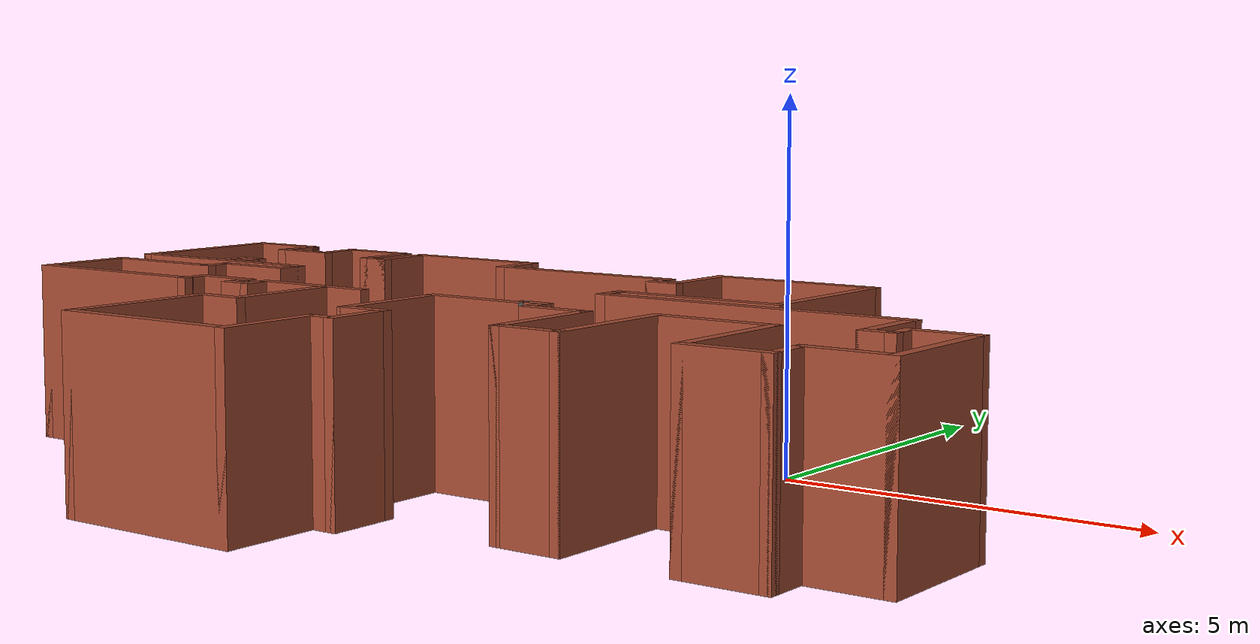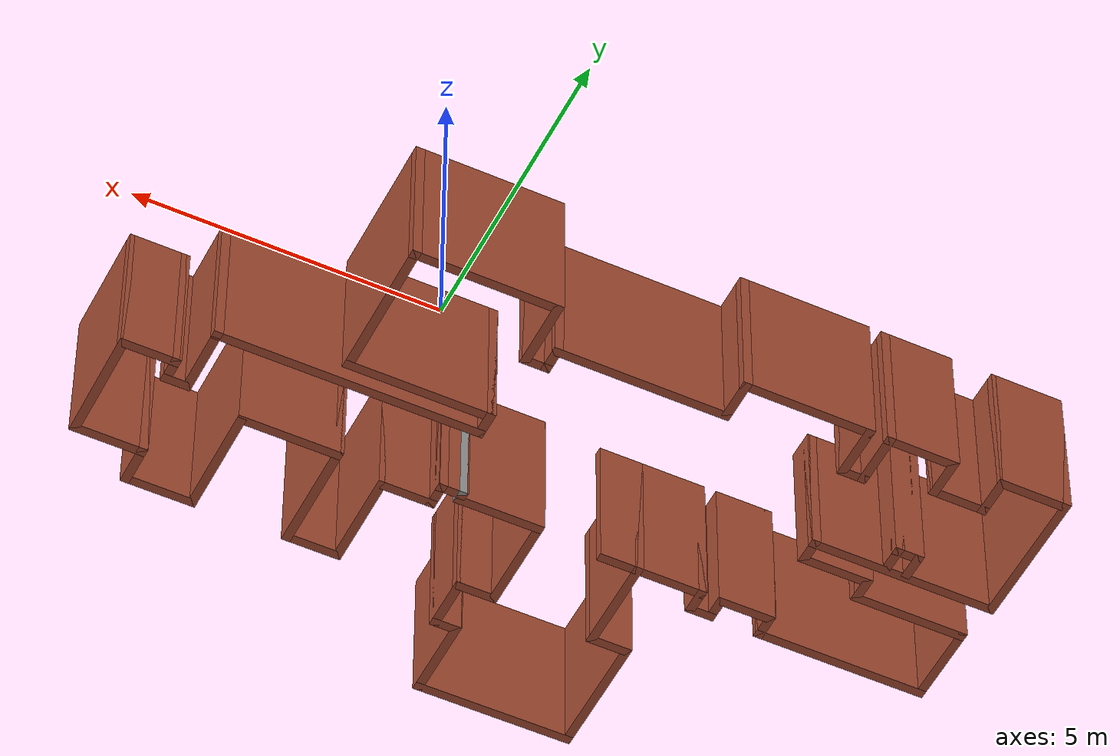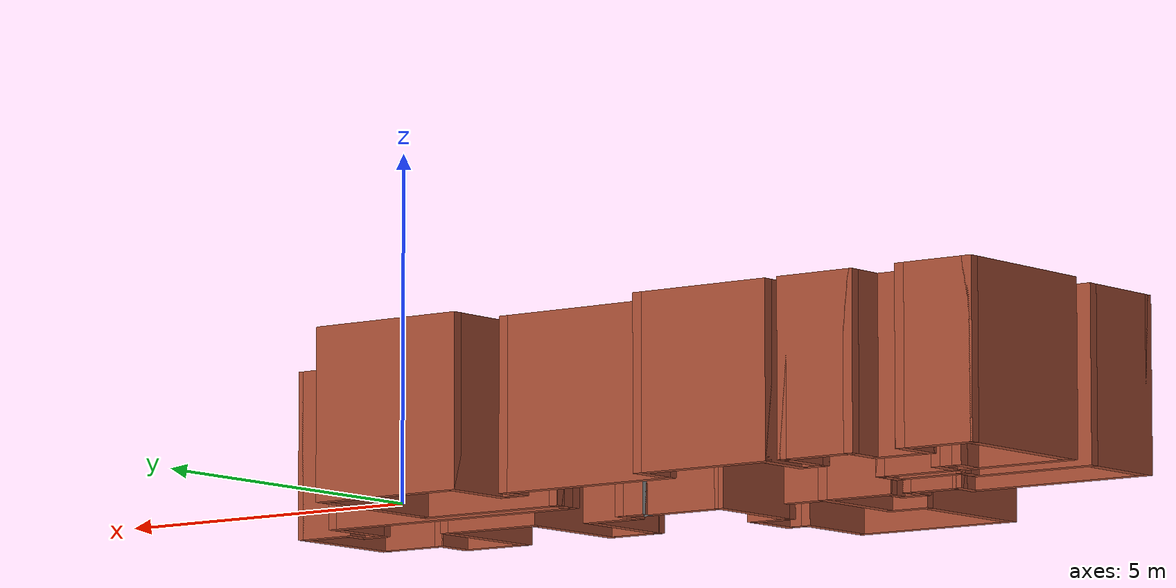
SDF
<?xml version='1.0'?>
<sdf version='1.6'>
  <model name='map_82'>
    <pose frame=''>-3.12718 -3.12906 0 0 -0 0</pose>
    <link name='Wall_10'>
      <collision name='Wall_10_Collision'>
        <geometry>
          <box>
            <size>1.25 0.15 2.5</size>
          </box>
        </geometry>
        <pose frame=''>0 0 1.25 0 -0 0</pose>
      </collision>
      <visual name='Wall_10_Visual'>
        <pose frame=''>0 0 1.25 0 -0 0</pose>
        <geometry>
          <box>
            <size>1.25 0.15 2.5</size>
          </box>
        </geometry>
        <material>
          <script>
            <uri>file://media/materials/scripts/gazebo.material</uri>
            <name>Gazebo/Bricks</name>
          </script>
          <ambient>1 1 1 1</ambient>
        </material>
        <meta>
          <layer>0</layer>
        </meta>
      </visual>
      <pose frame=''>-4.625 3.825 0 0 -0 3.14159</pose>
    </link>
    <link name='Wall_11'>
      <collision name='Wall_11_Collision'>
        <geometry>
          <box>
            <size>0.75 0.15 2.5</size>
          </box>
        </geometry>
        <pose frame=''>0 0 1.25 0 -0 0</pose>
      </collision>
      <visual name='Wall_11_Visual'>
        <pose frame=''>0 0 1.25 0 -0 0</pose>
        <geometry>
          <box>
            <size>0.75 0.15 2.5</size>
          </box>
        </geometry>
        <material>
          <script>
            <uri>file://media/materials/scripts/gazebo.material</uri>
            <name>Gazebo/Bricks</name>
          </script>
          <ambient>1 1 1 1</ambient>
        </material>
        <meta>
          <layer>0</layer>
        </meta>
      </visual>
      <pose frame=''>-5.175 3.525 0 0 -0 -1.5708</pose>
    </link>
    <link name='Wall_12'>
      <collision name='Wall_12_Collision'>
        <geometry>
          <box>
            <size>1 0.15 2.5</size>
          </box>
        </geometry>
        <pose frame=''>0 0 1.25 0 -0 0</pose>
      </collision>
      <visual name='Wall_12_Visual'>
        <pose frame=''>0 0 1.25 0 -0 0</pose>
        <geometry>
          <box>
            <size>1 0.15 2.5</size>
          </box>
        </geometry>
        <material>
          <script>
            <uri>file://media/materials/scripts/gazebo.material</uri>
            <name>Gazebo/Bricks</name>
          </script>
          <ambient>1 1 1 1</ambient>
        </material>
        <meta>
          <layer>0</layer>
        </meta>
      </visual>
      <pose frame=''>-5.6 3.225 0 0 -0 3.14159</pose>
    </link>
    <link name='Wall_13'>
      <collision name='Wall_13_Collision'>
        <geometry>
          <box>
            <size>0.75 0.15 2.5</size>
          </box>
        </geometry>
        <pose frame=''>0 0 1.25 0 -0 0</pose>
      </collision>
      <visual name='Wall_13_Visual'>
        <pose frame=''>0 0 1.25 0 -0 0</pose>
        <geometry>
          <box>
            <size>0.75 0.15 2.5</size>
          </box>
        </geometry>
        <material>
          <script>
            <uri>file://media/materials/scripts/gazebo.material</uri>
            <name>Gazebo/Bricks</name>
          </script>
          <ambient>1 1 1 1</ambient>
        </material>
        <meta>
          <layer>0</layer>
        </meta>
      </visual>
      <pose frame=''>-6.025 3.525 0 0 -0 1.5708</pose>
    </link>
    <link name='Wall_14'>
      <collision name='Wall_14_Collision'>
        <geometry>
          <box>
            <size>1.25 0.15 2.5</size>
          </box>
        </geometry>
        <pose frame=''>0 0 1.25 0 -0 0</pose>
      </collision>
      <visual name='Wall_14_Visual'>
        <pose frame=''>0 0 1.25 0 -0 0</pose>
        <geometry>
          <box>
            <size>1.25 0.15 2.5</size>
          </box>
        </geometry>
        <material>
          <script>
            <uri>file://media/materials/scripts/gazebo.material</uri>
            <name>Gazebo/Bricks</name>
          </script>
          <ambient>1 1 1 1</ambient>
        </material>
        <meta>
          <layer>0</layer>
        </meta>
      </visual>
      <pose frame=''>-6.575 3.825 0 0 -0 3.14159</pose>
    </link>
    <link name='Wall_17'>
      <collision name='Wall_17_Collision'>
        <geometry>
          <box>
            <size>2.5 0.15 2.5</size>
          </box>
        </geometry>
        <pose frame=''>0 0 1.25 0 -0 0</pose>
      </collision>
      <visual name='Wall_17_Visual'>
        <pose frame=''>0 0 1.25 0 -0 0</pose>
        <geometry>
          <box>
            <size>2.5 0.15 2.5</size>
          </box>
        </geometry>
        <material>
          <script>
            <uri>file://media/materials/scripts/gazebo.material</uri>
            <name>Gazebo/Bricks</name>
          </script>
          <ambient>1 1 1 1</ambient>
        </material>
        <meta>
          <layer>0</layer>
        </meta>
      </visual>
      <pose frame=''>-7.125 2.65 0 0 -0 -1.5708</pose>
    </link>
    <link name='Wall_18'>
      <collision name='Wall_18_Collision'>
        <geometry>
          <box>
            <size>3.25 0.15 2.5</size>
          </box>
        </geometry>
        <pose frame=''>0 0 1.25 0 -0 0</pose>
      </collision>
      <visual name='Wall_18_Visual'>
        <pose frame=''>0 0 1.25 0 -0 0</pose>
        <geometry>
          <box>
            <size>3.25 0.15 2.5</size>
          </box>
        </geometry>
        <material>
          <script>
            <uri>file://media/materials/scripts/gazebo.material</uri>
            <name>Gazebo/Bricks</name>
          </script>
          <ambient>1 1 1 1</ambient>
        </material>
        <meta>
          <layer>0</layer>
        </meta>
      </visual>
      <pose frame=''>-5.575 1.475 0 0 -0 0</pose>
    </link>
    <link name='Wall_19'>
      <collision name='Wall_19_Collision'>
        <geometry>
          <box>
            <size>0.5 0.15 2.5</size>
          </box>
        </geometry>
        <pose frame=''>0 0 1.25 0 -0 0</pose>
      </collision>
      <visual name='Wall_19_Visual'>
        <pose frame=''>0 0 1.25 0 -0 0</pose>
        <geometry>
          <box>
            <size>0.5 0.15 2.5</size>
          </box>
        </geometry>
        <material>
          <script>
            <uri>file://media/materials/scripts/gazebo.material</uri>
            <name>Gazebo/Bricks</name>
          </script>
          <ambient>1 1 1 1</ambient>
        </material>
        <meta>
          <layer>0</layer>
        </meta>
      </visual>
      <pose frame=''>-4.025 1.3 0 0 -0 -1.5708</pose>
    </link>
    <link name='Wall_2'>
      <collision name='Wall_2_Collision'>
        <geometry>
          <box>
            <size>2.25 0.15 2.5</size>
          </box>
        </geometry>
        <pose frame=''>0 0 1.25 0 -0 0</pose>
      </collision>
      <visual name='Wall_2_Visual'>
        <pose frame=''>0 0 1.25 0 -0 0</pose>
        <geometry>
          <box>
            <size>2.25 0.15 2.5</size>
          </box>
        </geometry>
        <material>
          <script>
            <uri>file://media/materials/scripts/gazebo.material</uri>
            <name>Gazebo/Bricks</name>
          </script>
          <ambient>1 1 1 1</ambient>
        </material>
        <meta>
          <layer>0</layer>
        </meta>
      </visual>
      <pose frame=''>-2.675 3.825 0 0 -0 3.14159</pose>
    </link>
    <link name='Wall_23'>
      <collision name='Wall_23_Collision'>
        <geometry>
          <box>
            <size>1.25 0.15 2.5</size>
          </box>
        </geometry>
        <pose frame=''>0 0 1.25 0 -0 0</pose>
      </collision>
      <visual name='Wall_23_Visual'>
        <pose frame=''>0 0 1.25 0 -0 0</pose>
        <geometry>
          <box>
            <size>1.25 0.15 2.5</size>
          </box>
        </geometry>
        <material>
          <script>
            <uri>file://media/materials/scripts/gazebo.material</uri>
            <name>Gazebo/Bricks</name>
          </script>
          <ambient>1 1 1 1</ambient>
        </material>
        <meta>
          <layer>0</layer>
        </meta>
      </visual>
      <pose frame=''>-4.575 1.125 0 0 -0 3.14159</pose>
    </link>
    <link name='Wall_24'>
      <collision name='Wall_24_Collision'>
        <geometry>
          <box>
            <size>0.5 0.15 2.5</size>
          </box>
        </geometry>
        <pose frame=''>0 0 1.25 0 -0 0</pose>
      </collision>
      <visual name='Wall_24_Visual'>
        <pose frame=''>0 0 1.25 0 -0 0</pose>
        <geometry>
          <box>
            <size>0.5 0.15 2.5</size>
          </box>
        </geometry>
        <material>
          <script>
            <uri>file://media/materials/scripts/gazebo.material</uri>
            <name>Gazebo/Bricks</name>
          </script>
          <ambient>1 1 1 1</ambient>
        </material>
        <meta>
          <layer>0</layer>
        </meta>
      </visual>
      <pose frame=''>-5.125 0.95 0 0 -0 -1.5708</pose>
    </link>
    <link name='Wall_25'>
      <collision name='Wall_25_Collision'>
        <geometry>
          <box>
            <size>2 0.15 2.5</size>
          </box>
        </geometry>
        <pose frame=''>0 0 1.25 0 -0 0</pose>
      </collision>
      <visual name='Wall_25_Visual'>
        <pose frame=''>0 0 1.25 0 -0 0</pose>
        <geometry>
          <box>
            <size>2 0.15 2.5</size>
          </box>
        </geometry>
        <material>
          <script>
            <uri>file://media/materials/scripts/gazebo.material</uri>
            <name>Gazebo/Bricks</name>
          </script>
          <ambient>1 1 1 1</ambient>
        </material>
        <meta>
          <layer>0</layer>
        </meta>
      </visual>
      <pose frame=''>-6.05 0.775 0 0 -0 3.14159</pose>
    </link>
    <link name='Wall_26'>
      <collision name='Wall_26_Collision'>
        <geometry>
          <box>
            <size>1.5 0.15 2.5</size>
          </box>
        </geometry>
        <pose frame=''>0 0 1.25 0 -0 0</pose>
      </collision>
      <visual name='Wall_26_Visual'>
        <pose frame=''>0 0 1.25 0 -0 0</pose>
        <geometry>
          <box>
            <size>1.5 0.15 2.5</size>
          </box>
        </geometry>
        <material>
          <script>
            <uri>file://media/materials/scripts/gazebo.material</uri>
            <name>Gazebo/Bricks</name>
          </script>
          <ambient>1 1 1 1</ambient>
        </material>
        <meta>
          <layer>0</layer>
        </meta>
      </visual>
      <pose frame=''>-6.975 0.1 0 0 -0 -1.5708</pose>
    </link>
    <link name='Wall_27'>
      <collision name='Wall_27_Collision'>
        <geometry>
          <box>
            <size>3 0.15 2.5</size>
          </box>
        </geometry>
        <pose frame=''>0 0 1.25 0 -0 0</pose>
      </collision>
      <visual name='Wall_27_Visual'>
        <pose frame=''>0 0 1.25 0 -0 0</pose>
        <geometry>
          <box>
            <size>3 0.15 2.5</size>
          </box>
        </geometry>
        <material>
          <script>
            <uri>file://media/materials/scripts/gazebo.material</uri>
            <name>Gazebo/Bricks</name>
          </script>
          <ambient>1 1 1 1</ambient>
        </material>
        <meta>
          <layer>0</layer>
        </meta>
      </visual>
      <pose frame=''>-5.55 -0.575 0 0 -0 0</pose>
    </link>
    <link name='Wall_28'>
      <collision name='Wall_28_Collision'>
        <geometry>
          <box>
            <size>0.5 0.15 2.5</size>
          </box>
        </geometry>
        <pose frame=''>0 0 1.25 0 -0 0</pose>
      </collision>
      <visual name='Wall_28_Visual'>
        <pose frame=''>0 0 1.25 0 -0 0</pose>
        <geometry>
          <box>
            <size>0.5 0.15 2.5</size>
          </box>
        </geometry>
        <material>
          <script>
            <uri>file://media/materials/scripts/gazebo.material</uri>
            <name>Gazebo/Bricks</name>
          </script>
          <ambient>1 1 1 1</ambient>
        </material>
        <meta>
          <layer>0</layer>
        </meta>
      </visual>
      <pose frame=''>-4.125 -0.4 0 0 -0 1.5708</pose>
    </link>
    <link name='Wall_29'>
      <collision name='Wall_29_Collision'>
        <geometry>
          <box>
            <size>1 0.15 2.5</size>
          </box>
        </geometry>
        <pose frame=''>0 0 1.25 0 -0 0</pose>
      </collision>
      <visual name='Wall_29_Visual'>
        <pose frame=''>0 0 1.25 0 -0 0</pose>
        <geometry>
          <box>
            <size>1 0.15 2.5</size>
          </box>
        </geometry>
        <material>
          <script>
            <uri>file://media/materials/scripts/gazebo.material</uri>
            <name>Gazebo/Bricks</name>
          </script>
          <ambient>1 1 1 1</ambient>
        </material>
        <meta>
          <layer>0</layer>
        </meta>
      </visual>
      <pose frame=''>-3.7 -0.225 0 0 -0 0</pose>
    </link>
    <link name='Wall_30'>
      <collision name='Wall_30_Collision'>
        <geometry>
          <box>
            <size>0.5 0.15 2.5</size>
          </box>
        </geometry>
        <pose frame=''>0 0 1.25 0 -0 0</pose>
      </collision>
      <visual name='Wall_30_Visual'>
        <pose frame=''>0 0 1.25 0 -0 0</pose>
        <geometry>
          <box>
            <size>0.5 0.15 2.5</size>
          </box>
        </geometry>
        <material>
          <script>
            <uri>file://media/materials/scripts/gazebo.material</uri>
            <name>Gazebo/Bricks</name>
          </script>
          <ambient>1 1 1 1</ambient>
        </material>
        <meta>
          <layer>0</layer>
        </meta>
      </visual>
      <pose frame=''>-3.275 -0.4 0 0 -0 -1.5708</pose>
    </link>
    <link name='Wall_31'>
      <collision name='Wall_31_Collision'>
        <geometry>
          <box>
            <size>0.5 0.15 2.5</size>
          </box>
        </geometry>
        <pose frame=''>0 0 1.25 0 -0 0</pose>
      </collision>
      <visual name='Wall_31_Visual'>
        <pose frame=''>0 0 1.25 0 -0 0</pose>
        <geometry>
          <box>
            <size>0.5 0.15 2.5</size>
          </box>
        </geometry>
        <material>
          <script>
            <uri>file://media/materials/scripts/gazebo.material</uri>
            <name>Gazebo/Bricks</name>
          </script>
          <ambient>1 1 1 1</ambient>
        </material>
        <meta>
          <layer>0</layer>
        </meta>
      </visual>
      <pose frame=''>-3.1 -0.575 0 0 -0 0</pose>
    </link>
    <link name='Wall_32'>
      <collision name='Wall_32_Collision'>
        <geometry>
          <box>
            <size>0.5 0.15 2.5</size>
          </box>
        </geometry>
        <pose frame=''>0 0 1.25 0 -0 0</pose>
      </collision>
      <visual name='Wall_32_Visual'>
        <pose frame=''>0 0 1.25 0 -0 0</pose>
        <geometry>
          <box>
            <size>0.5 0.15 2.5</size>
          </box>
        </geometry>
        <material>
          <script>
            <uri>file://media/materials/scripts/gazebo.material</uri>
            <name>Gazebo/Bricks</name>
          </script>
          <ambient>1 1 1 1</ambient>
        </material>
        <meta>
          <layer>0</layer>
        </meta>
      </visual>
      <pose frame=''>-2.925 -0.4 0 0 -0 1.5708</pose>
    </link>
    <link name='Wall_33'>
      <collision name='Wall_33_Collision'>
        <geometry>
          <box>
            <size>1.25 0.15 2.5</size>
          </box>
        </geometry>
        <pose frame=''>0 0 1.25 0 -0 0</pose>
      </collision>
      <visual name='Wall_33_Visual'>
        <pose frame=''>0 0 1.25 0 -0 0</pose>
        <geometry>
          <box>
            <size>1.25 0.15 2.5</size>
          </box>
        </geometry>
        <material>
          <script>
            <uri>file://media/materials/scripts/gazebo.material</uri>
            <name>Gazebo/Bricks</name>
          </script>
          <ambient>1 1 1 1</ambient>
        </material>
        <meta>
          <layer>0</layer>
        </meta>
      </visual>
      <pose frame=''>-2.375 -0.225 0 0 -0 0</pose>
    </link>
    <link name='Wall_34'>
      <collision name='Wall_34_Collision'>
        <geometry>
          <box>
            <size>1.75 0.15 2.5</size>
          </box>
        </geometry>
        <pose frame=''>0 0 1.25 0 -0 0</pose>
      </collision>
      <visual name='Wall_34_Visual'>
        <pose frame=''>0 0 1.25 0 -0 0</pose>
        <geometry>
          <box>
            <size>1.75 0.15 2.5</size>
          </box>
        </geometry>
        <material>
          <script>
            <uri>file://media/materials/scripts/gazebo.material</uri>
            <name>Gazebo/Bricks</name>
          </script>
          <ambient>1 1 1 1</ambient>
        </material>
        <meta>
          <layer>0</layer>
        </meta>
      </visual>
      <pose frame=''>-1.825 -1.025 0 0 -0 -1.5708</pose>
    </link>
    <link name='Wall_35'>
      <collision name='Wall_35_Collision'>
        <geometry>
          <box>
            <size>0.75 0.15 2.5</size>
          </box>
        </geometry>
        <pose frame=''>0 0 1.25 0 -0 0</pose>
      </collision>
      <visual name='Wall_35_Visual'>
        <pose frame=''>0 0 1.25 0 -0 0</pose>
        <geometry>
          <box>
            <size>0.75 0.15 2.5</size>
          </box>
        </geometry>
        <material>
          <script>
            <uri>file://media/materials/scripts/gazebo.material</uri>
            <name>Gazebo/Bricks</name>
          </script>
          <ambient>1 1 1 1</ambient>
        </material>
        <meta>
          <layer>0</layer>
        </meta>
      </visual>
      <pose frame=''>-2.125 -1.825 0 0 -0 3.14159</pose>
    </link>
    <link name='Wall_36'>
      <collision name='Wall_36_Collision'>
        <geometry>
          <box>
            <size>2.25 0.15 2.5</size>
          </box>
        </geometry>
        <pose frame=''>0 0 1.25 0 -0 0</pose>
      </collision>
      <visual name='Wall_36_Visual'>
        <pose frame=''>0 0 1.25 0 -0 0</pose>
        <geometry>
          <box>
            <size>2.25 0.15 2.5</size>
          </box>
        </geometry>
        <material>
          <script>
            <uri>file://media/materials/scripts/gazebo.material</uri>
            <name>Gazebo/Bricks</name>
          </script>
          <ambient>1 1 1 1</ambient>
        </material>
        <meta>
          <layer>0</layer>
        </meta>
      </visual>
      <pose frame=''>-2.425 -2.875 0 0 -0 -1.5708</pose>
    </link>
    <link name='Wall_37'>
      <collision name='Wall_37_Collision'>
        <geometry>
          <box>
            <size>2.75 0.15 2.5</size>
          </box>
        </geometry>
        <pose frame=''>0 0 1.25 0 -0 0</pose>
      </collision>
      <visual name='Wall_37_Visual'>
        <pose frame=''>0 0 1.25 0 -0 0</pose>
        <geometry>
          <box>
            <size>2.75 0.15 2.5</size>
          </box>
        </geometry>
        <material>
          <script>
            <uri>file://media/materials/scripts/gazebo.material</uri>
            <name>Gazebo/Bricks</name>
          </script>
          <ambient>1 1 1 1</ambient>
        </material>
        <meta>
          <layer>0</layer>
        </meta>
      </visual>
      <pose frame=''>-1.125 -3.925 0 0 -0 0</pose>
    </link>
    <link name='Wall_38'>
      <collision name='Wall_38_Collision'>
        <geometry>
          <box>
            <size>1.5 0.15 2.5</size>
          </box>
        </geometry>
        <pose frame=''>0 0 1.25 0 -0 0</pose>
      </collision>
      <visual name='Wall_38_Visual'>
        <pose frame=''>0 0 1.25 0 -0 0</pose>
        <geometry>
          <box>
            <size>1.5 0.15 2.5</size>
          </box>
        </geometry>
        <material>
          <script>
            <uri>file://media/materials/scripts/gazebo.material</uri>
            <name>Gazebo/Bricks</name>
          </script>
          <ambient>1 1 1 1</ambient>
        </material>
        <meta>
          <layer>0</layer>
        </meta>
      </visual>
      <pose frame=''>0.175 -3.25 0 0 -0 1.5708</pose>
    </link>
    <link name='Wall_39'>
      <collision name='Wall_39_Collision'>
        <geometry>
          <box>
            <size>0.5 0.15 2.5</size>
          </box>
        </geometry>
        <pose frame=''>0 0 1.25 0 -0 0</pose>
      </collision>
      <visual name='Wall_39_Visual'>
        <pose frame=''>0 0 1.25 0 -0 0</pose>
        <geometry>
          <box>
            <size>0.5 0.15 2.5</size>
          </box>
        </geometry>
        <material>
          <script>
            <uri>file://media/materials/scripts/gazebo.material</uri>
            <name>Gazebo/Bricks</name>
          </script>
          <ambient>1 1 1 1</ambient>
        </material>
        <meta>
          <layer>0</layer>
        </meta>
      </visual>
      <pose frame=''>0.35 -2.575 0 0 -0 0</pose>
    </link>
    <link name='Wall_42'>
      <collision name='Wall_42_Collision'>
        <geometry>
          <box>
            <size>1 0.15 2.5</size>
          </box>
        </geometry>
        <pose frame=''>0 0 1.25 0 -0 0</pose>
      </collision>
      <visual name='Wall_42_Visual'>
        <pose frame=''>0 0 1.25 0 -0 0</pose>
        <geometry>
          <box>
            <size>1 0.15 2.5</size>
          </box>
        </geometry>
        <material>
          <script>
            <uri>file://media/materials/scripts/gazebo.material</uri>
            <name>Gazebo/Bricks</name>
          </script>
          <ambient>1 1 1 1</ambient>
        </material>
        <meta>
          <layer>0</layer>
        </meta>
      </visual>
      <pose frame=''>0.525 -2.15 0 0 -0 1.5708</pose>
    </link>
    <link name='Wall_43'>
      <collision name='Wall_43_Collision'>
        <geometry>
          <box>
            <size>0.75 0.15 2.5</size>
          </box>
        </geometry>
        <pose frame=''>0 0 1.25 0 -0 0</pose>
      </collision>
      <visual name='Wall_43_Visual'>
        <pose frame=''>0 0 1.25 0 -0 0</pose>
        <geometry>
          <box>
            <size>0.75 0.15 2.5</size>
          </box>
        </geometry>
        <material>
          <script>
            <uri>file://media/materials/scripts/gazebo.material</uri>
            <name>Gazebo/Bricks</name>
          </script>
          <ambient>1 1 1 1</ambient>
        </material>
        <meta>
          <layer>0</layer>
        </meta>
      </visual>
      <pose frame=''>0.225 -1.725 0 0 -0 3.14159</pose>
    </link>
    <link name='Wall_44'>
      <collision name='Wall_44_Collision'>
        <geometry>
          <box>
            <size>1.75 0.15 2.5</size>
          </box>
        </geometry>
        <pose frame=''>0 0 1.25 0 -0 0</pose>
      </collision>
      <visual name='Wall_44_Visual'>
        <pose frame=''>0 0 1.25 0 -0 0</pose>
        <geometry>
          <box>
            <size>1.75 0.15 2.5</size>
          </box>
        </geometry>
        <material>
          <script>
            <uri>file://media/materials/scripts/gazebo.material</uri>
            <name>Gazebo/Bricks</name>
          </script>
          <ambient>1 1 1 1</ambient>
        </material>
        <meta>
          <layer>0</layer>
        </meta>
      </visual>
      <pose frame=''>-0.075 -0.925 0 0 -0 1.5708</pose>
    </link>
    <link name='Wall_45'>
      <collision name='Wall_45_Collision'>
        <geometry>
          <box>
            <size>1.5 0.15 2.5</size>
          </box>
        </geometry>
        <pose frame=''>0 0 1.25 0 -0 0</pose>
      </collision>
      <visual name='Wall_45_Visual'>
        <pose frame=''>0 0 1.25 0 -0 0</pose>
        <geometry>
          <box>
            <size>1.5 0.15 2.5</size>
          </box>
        </geometry>
        <material>
          <script>
            <uri>file://media/materials/scripts/gazebo.material</uri>
            <name>Gazebo/Bricks</name>
          </script>
          <ambient>1 1 1 1</ambient>
        </material>
        <meta>
          <layer>0</layer>
        </meta>
      </visual>
      <pose frame=''>0.6 -0.125 0 0 -0 0</pose>
    </link>
    <link name='Wall_46'>
      <collision name='Wall_46_Collision'>
        <geometry>
          <box>
            <size>0.25 0.15 2.5</size>
          </box>
        </geometry>
        <pose frame=''>0 0 1.25 0 -0 0</pose>
      </collision>
      <visual name='Wall_46_Visual'>
        <pose frame=''>0 0 1.25 0 -0 0</pose>
        <geometry>
          <box>
            <size>0.25 0.15 2.5</size>
          </box>
        </geometry>
        <material>
          <script>
            <uri>file://media/materials/scripts/gazebo.material</uri>
            <name>Gazebo/Grey</name>
          </script>
          <ambient>1 1 1 1</ambient>
        </material>
        <meta>
          <layer>0</layer>
        </meta>
      </visual>
      <pose frame=''>1.275 -0.075 0 0 -0 1.5708</pose>
    </link>
    <link name='Wall_47'>
      <collision name='Wall_47_Collision'>
        <geometry>
          <box>
            <size>0.5 0.15 2.5</size>
          </box>
        </geometry>
        <pose frame=''>0 0 1.25 0 -0 0</pose>
      </collision>
      <visual name='Wall_47_Visual'>
        <pose frame=''>0 0 1.25 0 -0 0</pose>
        <geometry>
          <box>
            <size>0.5 0.15 2.5</size>
          </box>
        </geometry>
        <material>
          <script>
            <uri>file://media/materials/scripts/gazebo.material</uri>
            <name>Gazebo/Bricks</name>
          </script>
          <ambient>1 1 1 1</ambient>
        </material>
        <meta>
          <layer>0</layer>
        </meta>
      </visual>
      <pose frame=''>1.45 -0.025 0 0 -0 0</pose>
    </link>
    <link name='Wall_48'>
      <collision name='Wall_48_Collision'>
        <geometry>
          <box>
            <size>0.5 0.15 2.5</size>
          </box>
        </geometry>
        <pose frame=''>0 0 1.25 0 -0 0</pose>
      </collision>
      <visual name='Wall_48_Visual'>
        <pose frame=''>0 0 1.25 0 -0 0</pose>
        <geometry>
          <box>
            <size>0.5 0.15 2.5</size>
          </box>
        </geometry>
        <material>
          <script>
            <uri>file://media/materials/scripts/gazebo.material</uri>
            <name>Gazebo/Bricks</name>
          </script>
          <ambient>1 1 1 1</ambient>
        </material>
        <meta>
          <layer>0</layer>
        </meta>
      </visual>
      <pose frame=''>1.625 -0.2 0 0 -0 -1.5708</pose>
    </link>
    <link name='Wall_49'>
      <collision name='Wall_49_Collision'>
        <geometry>
          <box>
            <size>1 0.15 2.5</size>
          </box>
        </geometry>
        <pose frame=''>0 0 1.25 0 -0 0</pose>
      </collision>
      <visual name='Wall_49_Visual'>
        <pose frame=''>0 0 1.25 0 -0 0</pose>
        <geometry>
          <box>
            <size>1 0.15 2.5</size>
          </box>
        </geometry>
        <material>
          <script>
            <uri>file://media/materials/scripts/gazebo.material</uri>
            <name>Gazebo/Bricks</name>
          </script>
          <ambient>1 1 1 1</ambient>
        </material>
        <meta>
          <layer>0</layer>
        </meta>
      </visual>
      <pose frame=''>2.05 -0.375 0 0 -0 0</pose>
    </link>
    <link name='Wall_5'>
      <collision name='Wall_5_Collision'>
        <geometry>
          <box>
            <size>1 0.15 2.5</size>
          </box>
        </geometry>
        <pose frame=''>0 0 1.25 0 -0 0</pose>
      </collision>
      <visual name='Wall_5_Visual'>
        <pose frame=''>0 0 1.25 0 -0 0</pose>
        <geometry>
          <box>
            <size>1 0.15 2.5</size>
          </box>
        </geometry>
        <material>
          <script>
            <uri>file://media/materials/scripts/gazebo.material</uri>
            <name>Gazebo/Bricks</name>
          </script>
          <ambient>1 1 1 1</ambient>
        </material>
        <meta>
          <layer>0</layer>
        </meta>
      </visual>
      <pose frame=''>-3.725 3.4 0 0 -0 -1.5708</pose>
    </link>
    <link name='Wall_50'>
      <collision name='Wall_50_Collision'>
        <geometry>
          <box>
            <size>1.75 0.15 2.5</size>
          </box>
        </geometry>
        <pose frame=''>0 0 1.25 0 -0 0</pose>
      </collision>
      <visual name='Wall_50_Visual'>
        <pose frame=''>0 0 1.25 0 -0 0</pose>
        <geometry>
          <box>
            <size>1.75 0.15 2.5</size>
          </box>
        </geometry>
        <material>
          <script>
            <uri>file://media/materials/scripts/gazebo.material</uri>
            <name>Gazebo/Bricks</name>
          </script>
          <ambient>1 1 1 1</ambient>
        </material>
        <meta>
          <layer>0</layer>
        </meta>
      </visual>
      <pose frame=''>2.475 -1.175 0 0 -0 -1.5708</pose>
    </link>
    <link name='Wall_51'>
      <collision name='Wall_51_Collision'>
        <geometry>
          <box>
            <size>1 0.15 2.5</size>
          </box>
        </geometry>
        <pose frame=''>0 0 1.25 0 -0 0</pose>
      </collision>
      <visual name='Wall_51_Visual'>
        <pose frame=''>0 0 1.25 0 -0 0</pose>
        <geometry>
          <box>
            <size>1 0.15 2.5</size>
          </box>
        </geometry>
        <material>
          <script>
            <uri>file://media/materials/scripts/gazebo.material</uri>
            <name>Gazebo/Bricks</name>
          </script>
          <ambient>1 1 1 1</ambient>
        </material>
        <meta>
          <layer>0</layer>
        </meta>
      </visual>
      <pose frame=''>2.9 -1.975 0 0 -0 0</pose>
    </link>
    <link name='Wall_52'>
      <collision name='Wall_52_Collision'>
        <geometry>
          <box>
            <size>2 0.15 2.5</size>
          </box>
        </geometry>
        <pose frame=''>0 0 1.25 0 -0 0</pose>
      </collision>
      <visual name='Wall_52_Visual'>
        <pose frame=''>0 0 1.25 0 -0 0</pose>
        <geometry>
          <box>
            <size>2 0.15 2.5</size>
          </box>
        </geometry>
        <material>
          <script>
            <uri>file://media/materials/scripts/gazebo.material</uri>
            <name>Gazebo/Bricks</name>
          </script>
          <ambient>1 1 1 1</ambient>
        </material>
        <meta>
          <layer>0</layer>
        </meta>
      </visual>
      <pose frame=''>3.325 -1.05 0 0 -0 1.5708</pose>
    </link>
    <link name='Wall_53'>
      <collision name='Wall_53_Collision'>
        <geometry>
          <box>
            <size>1.75 0.15 2.5</size>
          </box>
        </geometry>
        <pose frame=''>0 0 1.25 0 -0 0</pose>
      </collision>
      <visual name='Wall_53_Visual'>
        <pose frame=''>0 0 1.25 0 -0 0</pose>
        <geometry>
          <box>
            <size>1.75 0.15 2.5</size>
          </box>
        </geometry>
        <material>
          <script>
            <uri>file://media/materials/scripts/gazebo.material</uri>
            <name>Gazebo/Bricks</name>
          </script>
          <ambient>1 1 1 1</ambient>
        </material>
        <meta>
          <layer>0</layer>
        </meta>
      </visual>
      <pose frame=''>4.125 -0.125 0 0 -0 0</pose>
    </link>
    <link name='Wall_54'>
      <collision name='Wall_54_Collision'>
        <geometry>
          <box>
            <size>2 0.15 2.5</size>
          </box>
        </geometry>
        <pose frame=''>0 0 1.25 0 -0 0</pose>
      </collision>
      <visual name='Wall_54_Visual'>
        <pose frame=''>0 0 1.25 0 -0 0</pose>
        <geometry>
          <box>
            <size>2 0.15 2.5</size>
          </box>
        </geometry>
        <material>
          <script>
            <uri>file://media/materials/scripts/gazebo.material</uri>
            <name>Gazebo/Bricks</name>
          </script>
          <ambient>1 1 1 1</ambient>
        </material>
        <meta>
          <layer>0</layer>
        </meta>
      </visual>
      <pose frame=''>4.925 -1.05 0 0 -0 -1.5708</pose>
    </link>
    <link name='Wall_55'>
      <collision name='Wall_55_Collision'>
        <geometry>
          <box>
            <size>1.25 0.15 2.5</size>
          </box>
        </geometry>
        <pose frame=''>0 0 1.25 0 -0 0</pose>
      </collision>
      <visual name='Wall_55_Visual'>
        <pose frame=''>0 0 1.25 0 -0 0</pose>
        <geometry>
          <box>
            <size>1.25 0.15 2.5</size>
          </box>
        </geometry>
        <material>
          <script>
            <uri>file://media/materials/scripts/gazebo.material</uri>
            <name>Gazebo/Bricks</name>
          </script>
          <ambient>1 1 1 1</ambient>
        </material>
        <meta>
          <layer>0</layer>
        </meta>
      </visual>
      <pose frame=''>5.475 -1.975 0 0 -0 0</pose>
    </link>
    <link name='Wall_56'>
      <collision name='Wall_56_Collision'>
        <geometry>
          <box>
            <size>0.75 0.15 2.5</size>
          </box>
        </geometry>
        <pose frame=''>0 0 1.25 0 -0 0</pose>
      </collision>
      <visual name='Wall_56_Visual'>
        <pose frame=''>0 0 1.25 0 -0 0</pose>
        <geometry>
          <box>
            <size>0.75 0.15 2.5</size>
          </box>
        </geometry>
        <material>
          <script>
            <uri>file://media/materials/scripts/gazebo.material</uri>
            <name>Gazebo/Bricks</name>
          </script>
          <ambient>1 1 1 1</ambient>
        </material>
        <meta>
          <layer>0</layer>
        </meta>
      </visual>
      <pose frame=''>6.025 -1.675 0 0 -0 1.5708</pose>
    </link>
    <link name='Wall_57'>
      <collision name='Wall_57_Collision'>
        <geometry>
          <box>
            <size>1.25 0.15 2.5</size>
          </box>
        </geometry>
        <pose frame=''>0 0 1.25 0 -0 0</pose>
      </collision>
      <visual name='Wall_57_Visual'>
        <pose frame=''>0 0 1.25 0 -0 0</pose>
        <geometry>
          <box>
            <size>1.25 0.15 2.5</size>
          </box>
        </geometry>
        <material>
          <script>
            <uri>file://media/materials/scripts/gazebo.material</uri>
            <name>Gazebo/Bricks</name>
          </script>
          <ambient>1 1 1 1</ambient>
        </material>
        <meta>
          <layer>0</layer>
        </meta>
      </visual>
      <pose frame=''>6.575 -1.375 0 0 -0 0</pose>
    </link>
    <link name='Wall_58'>
      <collision name='Wall_58_Collision'>
        <geometry>
          <box>
            <size>2 0.15 2.5</size>
          </box>
        </geometry>
        <pose frame=''>0 0 1.25 0 -0 0</pose>
      </collision>
      <visual name='Wall_58_Visual'>
        <pose frame=''>0 0 1.25 0 -0 0</pose>
        <geometry>
          <box>
            <size>2 0.15 2.5</size>
          </box>
        </geometry>
        <material>
          <script>
            <uri>file://media/materials/scripts/gazebo.material</uri>
            <name>Gazebo/Bricks</name>
          </script>
          <ambient>1 1 1 1</ambient>
        </material>
        <meta>
          <layer>0</layer>
        </meta>
      </visual>
      <pose frame=''>7.125 -0.45 0 0 -0 1.5708</pose>
    </link>
    <link name='Wall_59'>
      <collision name='Wall_59_Collision'>
        <geometry>
          <box>
            <size>1 0.15 2.5</size>
          </box>
        </geometry>
        <pose frame=''>0 0 1.25 0 -0 0</pose>
      </collision>
      <visual name='Wall_59_Visual'>
        <pose frame=''>0 0 1.25 0 -0 0</pose>
        <geometry>
          <box>
            <size>1 0.15 2.5</size>
          </box>
        </geometry>
        <material>
          <script>
            <uri>file://media/materials/scripts/gazebo.material</uri>
            <name>Gazebo/Bricks</name>
          </script>
          <ambient>1 1 1 1</ambient>
        </material>
        <meta>
          <layer>0</layer>
        </meta>
      </visual>
      <pose frame=''>6.7 0.475 0 0 -0 3.14159</pose>
    </link>
    <link name='Wall_60'>
      <collision name='Wall_60_Collision'>
        <geometry>
          <box>
            <size>0.5 0.15 2.5</size>
          </box>
        </geometry>
        <pose frame=''>0 0 1.25 0 -0 0</pose>
      </collision>
      <visual name='Wall_60_Visual'>
        <pose frame=''>0 0 1.25 0 -0 0</pose>
        <geometry>
          <box>
            <size>0.5 0.15 2.5</size>
          </box>
        </geometry>
        <material>
          <script>
            <uri>file://media/materials/scripts/gazebo.material</uri>
            <name>Gazebo/Bricks</name>
          </script>
          <ambient>1 1 1 1</ambient>
        </material>
        <meta>
          <layer>0</layer>
        </meta>
      </visual>
      <pose frame=''>6.275 0.3 0 0 -0 -1.5708</pose>
    </link>
    <link name='Wall_61'>
      <collision name='Wall_61_Collision'>
        <geometry>
          <box>
            <size>0.5 0.15 2.5</size>
          </box>
        </geometry>
        <pose frame=''>0 0 1.25 0 -0 0</pose>
      </collision>
      <visual name='Wall_61_Visual'>
        <pose frame=''>0 0 1.25 0 -0 0</pose>
        <geometry>
          <box>
            <size>0.5 0.15 2.5</size>
          </box>
        </geometry>
        <material>
          <script>
            <uri>file://media/materials/scripts/gazebo.material</uri>
            <name>Gazebo/Bricks</name>
          </script>
          <ambient>1 1 1 1</ambient>
        </material>
        <meta>
          <layer>0</layer>
        </meta>
      </visual>
      <pose frame=''>6.1 0.125 0 0 -0 3.14159</pose>
    </link>
    <link name='Wall_65'>
      <collision name='Wall_65_Collision'>
        <geometry>
          <box>
            <size>1.25 0.15 2.5</size>
          </box>
        </geometry>
        <pose frame=''>0 0 1.25 0 -0 0</pose>
      </collision>
      <visual name='Wall_65_Visual'>
        <pose frame=''>0 0 1.25 0 -0 0</pose>
        <geometry>
          <box>
            <size>1.25 0.15 2.5</size>
          </box>
        </geometry>
        <material>
          <script>
            <uri>file://media/materials/scripts/gazebo.material</uri>
            <name>Gazebo/Bricks</name>
          </script>
          <ambient>1 1 1 1</ambient>
        </material>
        <meta>
          <layer>0</layer>
        </meta>
      </visual>
      <pose frame=''>5.925 0.675 0 0 -0 1.5708</pose>
    </link>
    <link name='Wall_66'>
      <collision name='Wall_66_Collision'>
        <geometry>
          <box>
            <size>4.5 0.15 2.5</size>
          </box>
        </geometry>
        <pose frame=''>0 0 1.25 0 -0 0</pose>
      </collision>
      <visual name='Wall_66_Visual'>
        <pose frame=''>0 0 1.25 0 -0 0</pose>
        <geometry>
          <box>
            <size>4.5 0.15 2.5</size>
          </box>
        </geometry>
        <material>
          <script>
            <uri>file://media/materials/scripts/gazebo.material</uri>
            <name>Gazebo/Bricks</name>
          </script>
          <ambient>1 1 1 1</ambient>
        </material>
        <meta>
          <layer>0</layer>
        </meta>
      </visual>
      <pose frame=''>3.75 1.225 0 0 -0 3.14159</pose>
    </link>
    <link name='Wall_67'>
      <collision name='Wall_67_Collision'>
        <geometry>
          <box>
            <size>0.5 0.15 2.5</size>
          </box>
        </geometry>
        <pose frame=''>0 0 1.25 0 -0 0</pose>
      </collision>
      <visual name='Wall_67_Visual'>
        <pose frame=''>0 0 1.25 0 -0 0</pose>
        <geometry>
          <box>
            <size>0.5 0.15 2.5</size>
          </box>
        </geometry>
        <material>
          <script>
            <uri>file://media/materials/scripts/gazebo.material</uri>
            <name>Gazebo/Bricks</name>
          </script>
          <ambient>1 1 1 1</ambient>
        </material>
        <meta>
          <layer>0</layer>
        </meta>
      </visual>
      <pose frame=''>1.575 1.4 0 0 -0 1.5708</pose>
    </link>
    <link name='Wall_68'>
      <collision name='Wall_68_Collision'>
        <geometry>
          <box>
            <size>2.5 0.15 2.5</size>
          </box>
        </geometry>
        <pose frame=''>0 0 1.25 0 -0 0</pose>
      </collision>
      <visual name='Wall_68_Visual'>
        <pose frame=''>0 0 1.25 0 -0 0</pose>
        <geometry>
          <box>
            <size>2.5 0.15 2.5</size>
          </box>
        </geometry>
        <material>
          <script>
            <uri>file://media/materials/scripts/gazebo.material</uri>
            <name>Gazebo/Bricks</name>
          </script>
          <ambient>1 1 1 1</ambient>
        </material>
        <meta>
          <layer>0</layer>
        </meta>
      </visual>
      <pose frame=''>2.75 1.575 0 0 -0 0</pose>
    </link>
    <link name='Wall_69'>
      <collision name='Wall_69_Collision'>
        <geometry>
          <box>
            <size>2.5 0.15 2.5</size>
          </box>
        </geometry>
        <pose frame=''>0 0 1.25 0 -0 0</pose>
      </collision>
      <visual name='Wall_69_Visual'>
        <pose frame=''>0 0 1.25 0 -0 0</pose>
        <geometry>
          <box>
            <size>2.5 0.15 2.5</size>
          </box>
        </geometry>
        <material>
          <script>
            <uri>file://media/materials/scripts/gazebo.material</uri>
            <name>Gazebo/Bricks</name>
          </script>
          <ambient>1 1 1 1</ambient>
        </material>
        <meta>
          <layer>0</layer>
        </meta>
      </visual>
      <pose frame=''>3.925 2.75 0 0 -0 1.5708</pose>
    </link>
    <link name='Wall_70'>
      <collision name='Wall_70_Collision'>
        <geometry>
          <box>
            <size>2.5 0.15 2.5</size>
          </box>
        </geometry>
        <pose frame=''>0 0 1.25 0 -0 0</pose>
      </collision>
      <visual name='Wall_70_Visual'>
        <pose frame=''>0 0 1.25 0 -0 0</pose>
        <geometry>
          <box>
            <size>2.5 0.15 2.5</size>
          </box>
        </geometry>
        <material>
          <script>
            <uri>file://media/materials/scripts/gazebo.material</uri>
            <name>Gazebo/Bricks</name>
          </script>
          <ambient>1 1 1 1</ambient>
        </material>
        <meta>
          <layer>0</layer>
        </meta>
      </visual>
      <pose frame=''>2.75 3.925 0 0 -0 3.14159</pose>
    </link>
    <link name='Wall_71'>
      <collision name='Wall_71_Collision'>
        <geometry>
          <box>
            <size>1.25 0.15 2.5</size>
          </box>
        </geometry>
        <pose frame=''>0 0 1.25 0 -0 0</pose>
      </collision>
      <visual name='Wall_71_Visual'>
        <pose frame=''>0 0 1.25 0 -0 0</pose>
        <geometry>
          <box>
            <size>1.25 0.15 2.5</size>
          </box>
        </geometry>
        <material>
          <script>
            <uri>file://media/materials/scripts/gazebo.material</uri>
            <name>Gazebo/Bricks</name>
          </script>
          <ambient>1 1 1 1</ambient>
        </material>
        <meta>
          <layer>0</layer>
        </meta>
      </visual>
      <pose frame=''>1.575 3.375 0 0 -0 -1.5708</pose>
    </link>
    <link name='Wall_72'>
      <collision name='Wall_72_Collision'>
        <geometry>
          <box>
            <size>0.5 0.15 2.5</size>
          </box>
        </geometry>
        <pose frame=''>0 0 1.25 0 -0 0</pose>
      </collision>
      <visual name='Wall_72_Visual'>
        <pose frame=''>0 0 1.25 0 -0 0</pose>
        <geometry>
          <box>
            <size>0.5 0.15 2.5</size>
          </box>
        </geometry>
        <material>
          <script>
            <uri>file://media/materials/scripts/gazebo.material</uri>
            <name>Gazebo/Bricks</name>
          </script>
          <ambient>1 1 1 1</ambient>
        </material>
        <meta>
          <layer>0</layer>
        </meta>
      </visual>
      <pose frame=''>1.4 2.825 0 0 -0 3.14159</pose>
    </link>
    <link name='Wall_73'>
      <collision name='Wall_73_Collision'>
        <geometry>
          <box>
            <size>0.5 0.15 2.5</size>
          </box>
        </geometry>
        <pose frame=''>0 0 1.25 0 -0 0</pose>
      </collision>
      <visual name='Wall_73_Visual'>
        <pose frame=''>0 0 1.25 0 -0 0</pose>
        <geometry>
          <box>
            <size>0.5 0.15 2.5</size>
          </box>
        </geometry>
        <material>
          <script>
            <uri>file://media/materials/scripts/gazebo.material</uri>
            <name>Gazebo/Bricks</name>
          </script>
          <ambient>1 1 1 1</ambient>
        </material>
        <meta>
          <layer>0</layer>
        </meta>
      </visual>
      <pose frame=''>1.225 3 0 0 -0 1.5708</pose>
    </link>
    <link name='Wall_78'>
      <collision name='Wall_78_Collision'>
        <geometry>
          <box>
            <size>3 0.15 2.5</size>
          </box>
        </geometry>
        <pose frame=''>0 0 1.25 0 -0 0</pose>
      </collision>
      <visual name='Wall_78_Visual'>
        <pose frame=''>0 0 1.25 0 -0 0</pose>
        <geometry>
          <box>
            <size>3 0.15 2.5</size>
          </box>
        </geometry>
        <material>
          <script>
            <uri>file://media/materials/scripts/gazebo.material</uri>
            <name>Gazebo/Bricks</name>
          </script>
          <ambient>1 1 1 1</ambient>
        </material>
        <meta>
          <layer>0</layer>
        </meta>
      </visual>
      <pose frame=''>-0.2 3.175 0 0 -0 3.14159</pose>
    </link>
    <link name='Wall_79'>
      <collision name='Wall_79_Collision'>
        <geometry>
          <box>
            <size>0.8 0.15 2.5</size>
          </box>
        </geometry>
        <pose frame=''>0 0 1.25 0 -0 0</pose>
      </collision>
      <visual name='Wall_79_Visual'>
        <pose frame=''>0 0 1.25 0 -0 0</pose>
        <geometry>
          <box>
            <size>0.8 0.15 2.5</size>
          </box>
        </geometry>
        <material>
          <script>
            <uri>file://media/materials/scripts/gazebo.material</uri>
            <name>Gazebo/Bricks</name>
          </script>
          <ambient>1 1 1 1</ambient>
        </material>
        <meta>
          <layer>0</layer>
        </meta>
      </visual>
      <pose frame=''>-1.625 3.5 0 0 -0 1.5708</pose>
    </link>
    <link name='Wall_8'>
      <collision name='Wall_8_Collision'>
        <geometry>
          <box>
            <size>0.5 0.15 2.5</size>
          </box>
        </geometry>
        <pose frame=''>0 0 1.25 0 -0 0</pose>
      </collision>
      <visual name='Wall_8_Visual'>
        <pose frame=''>0 0 1.25 0 -0 0</pose>
        <geometry>
          <box>
            <size>0.5 0.15 2.5</size>
          </box>
        </geometry>
        <material>
          <script>
            <uri>file://media/materials/scripts/gazebo.material</uri>
            <name>Gazebo/Bricks</name>
          </script>
          <ambient>1 1 1 1</ambient>
        </material>
        <meta>
          <layer>0</layer>
        </meta>
      </visual>
      <pose frame=''>-3.9 2.975 0 0 -0 3.14159</pose>
    </link>
    <link name='Wall_81'>
      <collision name='Wall_81_Collision'>
        <geometry>
          <box>
            <size>0.75 0.15 2.5</size>
          </box>
        </geometry>
        <pose frame=''>0 0 1.25 0 -0 0</pose>
      </collision>
      <visual name='Wall_81_Visual'>
        <pose frame=''>0 0 1.25 0 -0 0</pose>
        <geometry>
          <box>
            <size>0.75 0.15 2.5</size>
          </box>
        </geometry>
        <material>
          <script>
            <uri>file://media/materials/scripts/gazebo.material</uri>
            <name>Gazebo/Bricks</name>
          </script>
          <ambient>1 1 1 1</ambient>
        </material>
        <meta>
          <layer>0</layer>
        </meta>
      </visual>
      <pose frame=''>-1.525 -0.225 0 0 -0 0</pose>
    </link>
    <link name='Wall_85'>
      <collision name='Wall_85_Collision'>
        <geometry>
          <box>
            <size>0.5 0.15 2.5</size>
          </box>
        </geometry>
        <pose frame=''>0 0 1.25 0 -0 0</pose>
      </collision>
      <visual name='Wall_85_Visual'>
        <pose frame=''>0 0 1.25 0 -0 0</pose>
        <geometry>
          <box>
            <size>0.5 0.15 2.5</size>
          </box>
        </geometry>
        <material>
          <script>
            <uri>file://media/materials/scripts/gazebo.material</uri>
            <name>Gazebo/Bricks</name>
          </script>
          <ambient>1 1 1 1</ambient>
        </material>
        <meta>
          <layer>0</layer>
        </meta>
      </visual>
      <pose frame=''>-5.60346 1.72478 0 0 -0 1.5708</pose>
    </link>
    <link name='Wall_86'>
      <collision name='Wall_86_Collision'>
        <geometry>
          <box>
            <size>0.5 0.15 2.5</size>
          </box>
        </geometry>
        <pose frame=''>0 0 1.25 0 -0 0</pose>
      </collision>
      <visual name='Wall_86_Visual'>
        <pose frame=''>0 0 1.25 0 -0 0</pose>
        <geometry>
          <box>
            <size>0.5 0.15 2.5</size>
          </box>
        </geometry>
        <material>
          <script>
            <uri>file://media/materials/scripts/gazebo.material</uri>
            <name>Gazebo/Bricks</name>
          </script>
          <ambient>1 1 1 1</ambient>
        </material>
        <meta>
          <layer>0</layer>
        </meta>
      </visual>
      <pose frame=''>-5.42847 1.89978 0 0 -0 0</pose>
    </link>
    <link name='Wall_87'>
      <collision name='Wall_87_Collision'>
        <geometry>
          <box>
            <size>0.5 0.15 2.5</size>
          </box>
        </geometry>
        <pose frame=''>0 0 1.25 0 -0 0</pose>
      </collision>
      <visual name='Wall_87_Visual'>
        <pose frame=''>0 0 1.25 0 -0 0</pose>
        <geometry>
          <box>
            <size>0.5 0.15 2.5</size>
          </box>
        </geometry>
        <material>
          <script>
            <uri>file://media/materials/scripts/gazebo.material</uri>
            <name>Gazebo/Bricks</name>
          </script>
          <ambient>1 1 1 1</ambient>
        </material>
        <meta>
          <layer>0</layer>
        </meta>
      </visual>
      <pose frame=''>-5.25347 1.72478 0 0 -0 -1.5708</pose>
    </link>
    <link name='Wall_9'>
      <collision name='Wall_9_Collision'>
        <geometry>
          <box>
            <size>1 0.15 2.5</size>
          </box>
        </geometry>
        <pose frame=''>0 0 1.25 0 -0 0</pose>
      </collision>
      <visual name='Wall_9_Visual'>
        <pose frame=''>0 0 1.25 0 -0 0</pose>
        <geometry>
          <box>
            <size>1 0.15 2.5</size>
          </box>
        </geometry>
        <material>
          <script>
            <uri>file://media/materials/scripts/gazebo.material</uri>
            <name>Gazebo/Bricks</name>
          </script>
          <ambient>1 1 1 1</ambient>
        </material>
        <meta>
          <layer>0</layer>
        </meta>
      </visual>
      <pose frame=''>-4.075 3.4 0 0 -0 1.5708</pose>
    </link>
    <static>1</static>
  </model>
</sdf>
